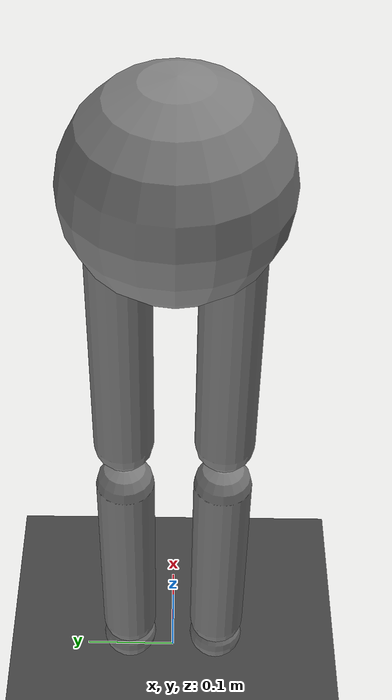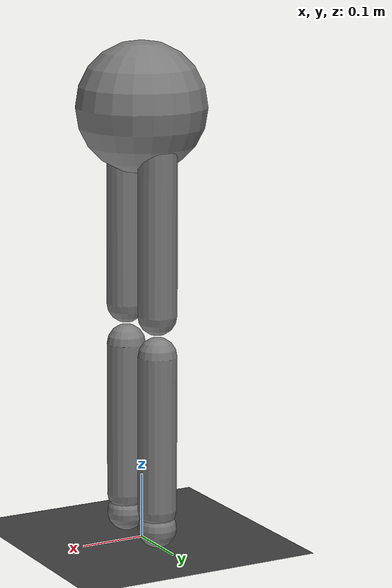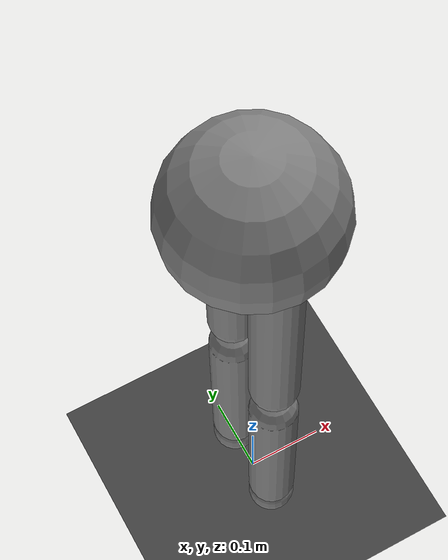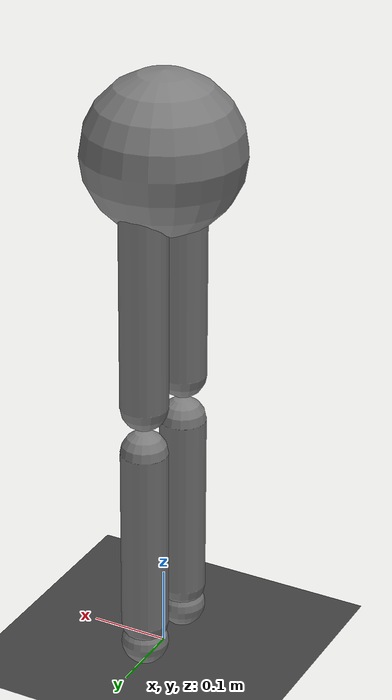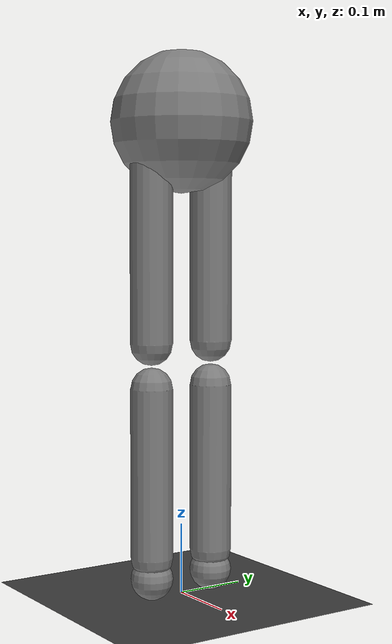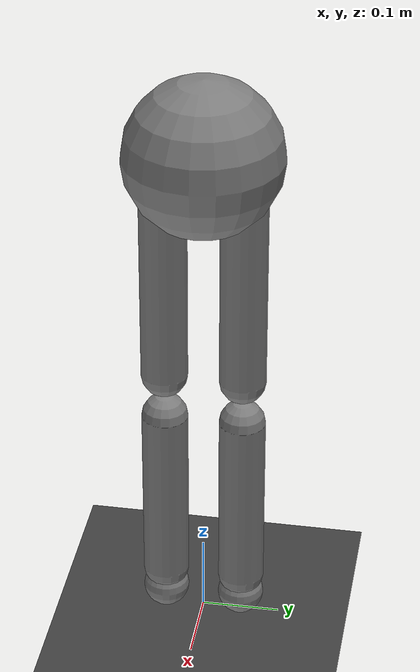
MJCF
<mujoco model="pm_mll">
  <compiler settotalmass="50.0"/>
  <default>
    <default class="/"/>
    <default class="left_leg/"/>
    <default class="right_leg/"/>
  </default>
  <asset>
    <texture name="texplane" type="2d" builtin="checker" rgb1="0.20000000000000001 0.20000000000000001 0.20000000000000001" rgb2="0.29999999999999999 0.29999999999999999 0.29999999999999999" width="512" height="512"/>
    <material name="grid" class="/" texture="texplane" texrepeat="1 1" texuniform="true" reflectance="0.0"/>
  </asset>
  <worldbody>
    <geom name="floor" class="/" type="plane" conaffinity="1" size="100 100 0.20000000000000001" material="grid" pos="0 0 0"/>
    <body name="torso" pos="0 0 0.67100000000000004">
      <light name="top" class="/" mode="trackcom" pos="0 0 2"/>
      <camera name="back" class="/" mode="trackcom" pos="-3 0 1" xyaxes="0 -1 0 1 0 2"/>
      <camera name="side" class="/" mode="trackcom" pos="0 -3 1" xyaxes="1 0 0 0 1 2"/>
      <freejoint name="root"/>
      <geom name="head" class="/" type="sphere" size="0.10000000000000001" pos="0 0 0"/>
      <camera name="egocentric" class="/" fovy="80.0" pos="0.089999999999999997 0 0" xyaxes="0 -1 0 0.10000000000000001 1 2"/>
      <site name="left_leg_site" class="/" size="9.9999999999999995e-07 9.9999999999999995e-07 9.9999999999999995e-07" pos="0 0.050000000000000003 0"/>
      <body pos="0 0.050000000000000003 0" name="left_leg/">
        <body name="left_leg/thigh">
          <joint name="left_leg/hip_x" class="left_leg/" type="hinge" axis="1 0 0" limited="true" solimplimit="0 0.98999999999999999 0.01" range="-25 5"/>
          <joint name="left_leg/hip_y" class="left_leg/" type="hinge" axis="0 1 0" limited="true" solimplimit="0 0.98999999999999999 0.01" range="-110 20"/>
          <geom name="left_leg/thigh" class="left_leg/" type="capsule" size="0.029999999999999999" mass="1e-06" fromto="0 0 0 0 0 -0.31000000000000005"/>
          <body name="left_leg/shin" pos="0 0 -0.373">
            <joint name="left_leg/knee" class="left_leg/" type="slide" pos="0 0 0.02" axis="0 0 1" limited="true" solimplimit="0 0.98999999999999999 0.01" stiffness="1.0" range="-160 2" armature="0.01" damping="0.0"/>
            <geom name="left_leg/shin" class="left_leg/" type="capsule" size="0.029999999999999999" mass="1e-06" fromto="0 0 0 0 0 -0.23999999999999999"/>
            <body name="left_leg/foot" pos="0 0 -0.26999999999999996">
              <geom name="left_leg/foot" class="left_leg/" type="sphere" size="0.029999999999999999" mass="0.1" pos="0 0 0"/>
            </body>
          </body>
        </body>
      </body>
      <site name="right_leg_site" class="/" size="9.9999999999999995e-07 9.9999999999999995e-07 9.9999999999999995e-07" pos="0 -0.050000000000000003 0"/>
      <body pos="0 -0.050000000000000003 0" name="right_leg/">
        <body name="right_leg/thigh">
          <joint name="right_leg/hip_x" class="right_leg/" type="hinge" axis="1 0 0" limited="true" solimplimit="0 0.98999999999999999 0.01" range="-25 5"/>
          <joint name="right_leg/hip_y" class="right_leg/" type="hinge" axis="0 1 0" limited="true" solimplimit="0 0.98999999999999999 0.01" range="-110 20"/>
          <geom name="right_leg/thigh" class="right_leg/" type="capsule" size="0.029999999999999999" mass="1e-06" fromto="0 0 0 0 0 -0.31000000000000005"/>
          <body name="right_leg/shin" pos="0 0 -0.373">
            <joint name="right_leg/knee" class="right_leg/" type="slide" pos="0 0 0.02" axis="0 0 1" limited="true" solimplimit="0 0.98999999999999999 0.01" stiffness="1.0" range="-160 2" armature="0.01" damping="0.0"/>
            <geom name="right_leg/shin" class="right_leg/" type="capsule" size="0.029999999999999999" mass="1e-06" fromto="0 0 0 0 0 -0.23999999999999999"/>
            <body name="right_leg/foot" pos="0 0 -0.26999999999999996">
              <geom name="right_leg/foot" class="right_leg/" type="sphere" size="0.029999999999999999" mass="0.1" pos="0 0 0"/>
            </body>
          </body>
        </body>
      </body>
    </body>
  </worldbody>
  <equality>
    <weld name="world_root" class="/" active="false" body1="torso" relpose="0 0 -2 1 0 0 0"/>
  </equality>
  <actuator>
    <motor name="left_leg/hip_x" class="left_leg/" joint="left_leg/hip_x"/>
    <motor name="left_leg/hip_y" class="left_leg/" joint="left_leg/hip_y"/>
    <motor name="left_leg/knee" class="left_leg/" joint="left_leg/knee"/>
    <motor name="right_leg/hip_x" class="right_leg/" joint="right_leg/hip_x"/>
    <motor name="right_leg/hip_y" class="right_leg/" joint="right_leg/hip_y"/>
    <motor name="right_leg/knee" class="right_leg/" joint="right_leg/knee"/>
  </actuator>
</mujoco>
